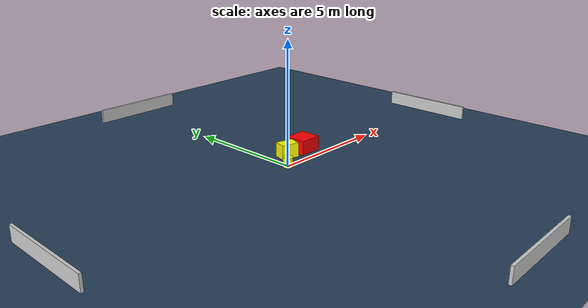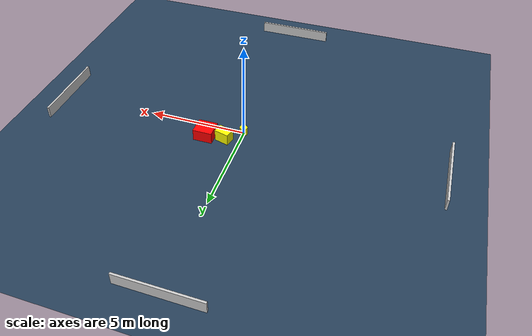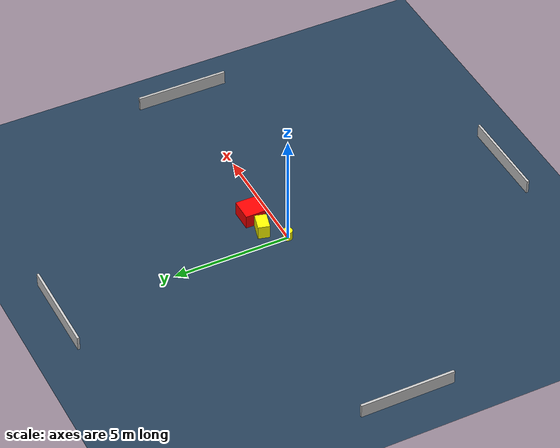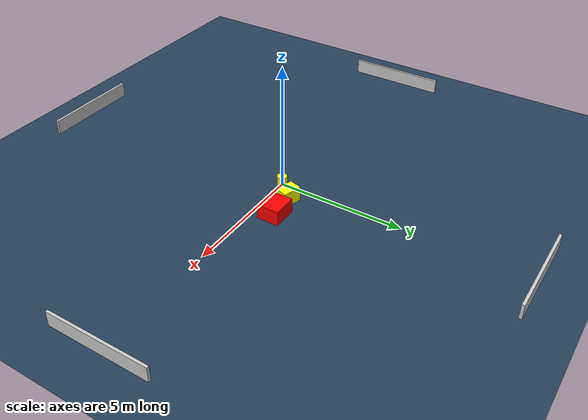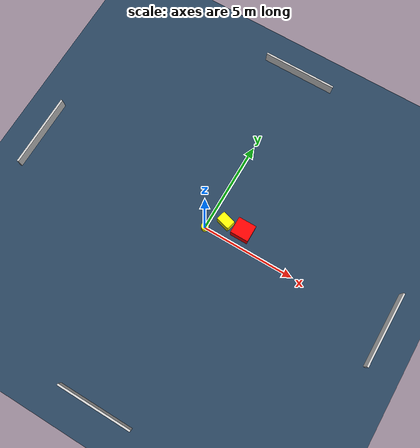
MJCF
<?xml version="1.0" ?>
<mujoco model="generated_environment">
  <option timestep="0.01" integrator="RK4" cone="elliptic"/>
  <default>
    <geom density="1"/>
  </default>
  <asset>
    <texture builtin="gradient" height="3072" name="skybox" rgb1="0.3 0.5 0.7" rgb2="0 0 0" type="skybox" width="512"/>
    <texture builtin="checker" height="300" name="groundplane" rgb1="0.2 0.3 0.4" rgb2="0.1 0.2 0.3" type="2d" width="300"/>
    <material name="groundplane" reflectance="0.2" texrepeat="5 5" texture="groundplane"/>
  </asset>
  <worldbody>
    <light dir="0 0 -1" directional="true" pos="0 0 1.5"/>
    <geom condim="3" friction="0.5 0.005 0.001" material="groundplane" name="floor" pos="0 0 0" size="0 0 0.05" type="plane"/>
    <body name="walls">
      <geom name="wall_1" condim="4" pos="-10.0 0.0 0.3" rgba="0.800000011920929 0.800000011920929 0.800000011920929 1.0" size="0.05 2.0 0.3" type="box"/>
      <geom name="wall_2" condim="4" pos="10.0 0.0 0.3" rgba="0.800000011920929 0.800000011920929 0.800000011920929 1.0" size="0.05 2.0 0.3" type="box"/>
      <geom name="wall_3" condim="4" pos="0.0 -10.0 0.3" rgba="0.800000011920929 0.800000011920929 0.800000011920929 1.0" size="2.0 0.05 0.3" type="box"/>
      <geom name="wall_4" condim="4" pos="0.0 10.0 0.3" rgba="0.800000011920929 0.800000011920929 0.800000011920929 1.0" size="2.0 0.05 0.3" type="box"/>
    </body>
    <body name="robot">
      <joint name="joint_x" type="slide" pos="0 0 0" axis="1 0 0"/>
      <joint name="joint_y" type="slide" pos="0 0 0" axis="0 1 0"/>
      <geom name="robot" type="cylinder" pos="0.0 0.0 0.2" size="0.2 0.2 0.0" mass="5.0" friction="1.0 0.005 0.0001" condim="4" rgba="1.0 1.0 0.0 1.0"/>
    </body>
    <body name="obstacle_1_movable">
      <geom name="obstacle_1_movable" condim="4" pos="0.7708611660441738 0.7600109713435217 0.3" euler="0 0 74.9754440673396" friction="0.0 0.005 0.001" rgba="1.0 1.0 0.0 1.0" size="0.2514267130405725 0.3731386461107198 0.3" type="box" mass="0.1"/>
      <joint type="free"/>
    </body>
    <body name="obstacle_2_static">
      <geom name="obstacle_2_static" condim="4" pos="1.7460341773332806 0.7974476636708002 0.3" euler="0 0 270.17223286257456" friction="0.0 0.005 0.001" rgba="1.0 0.0 0.0 1.0" size="0.44442471370586967 0.4855634500128314 0.3" type="box"/>
    </body>
  </worldbody>
  <actuator>
    <motor name="actuator_x" joint="joint_x" gear="1" ctrlrange="-1 1"/>
    <motor name="actuator_y" joint="joint_y" gear="1" ctrlrange="-1 1"/>
  </actuator>
</mujoco>
